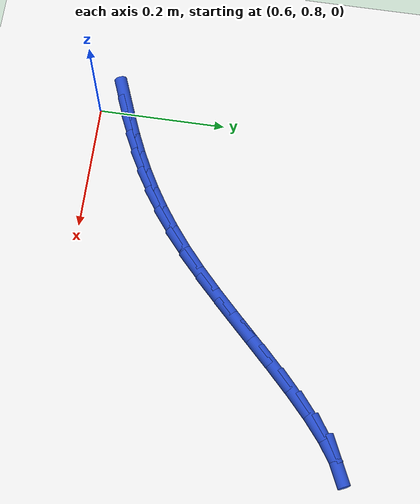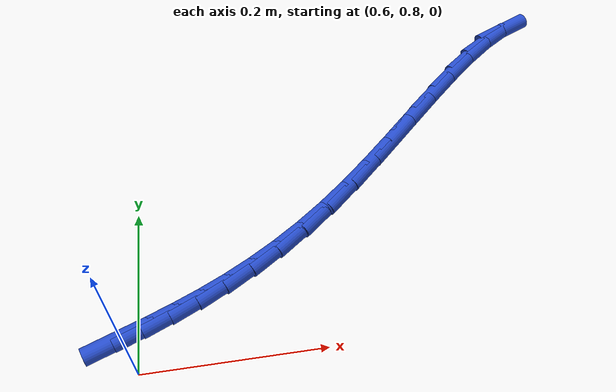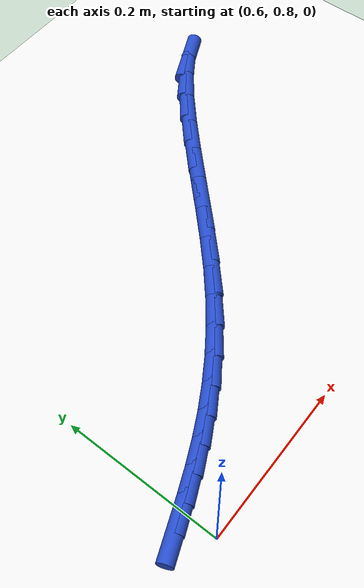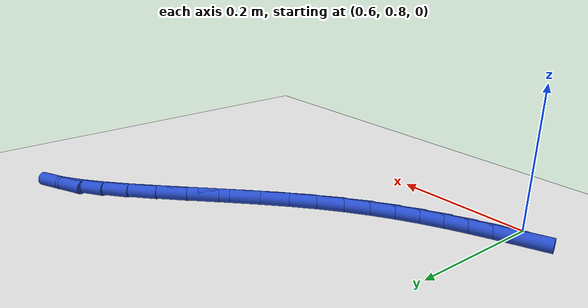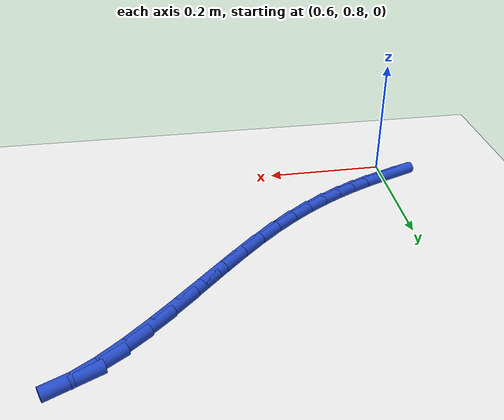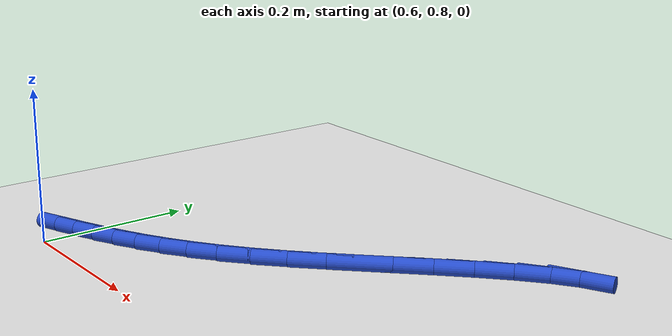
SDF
<sdf version="1.6">
 <world name="default">
  <model name="ground_plane">
   <static>1</static>
   <link name="link">
    <collision name="collision">
     <geometry><plane><normal>0 0 1</normal><size>100 100</size></plane></geometry>
     <surface><friction><ode><mu>100</mu><mu2>50</mu2></ode></friction></surface>
    </collision>
    <visual name="visual">
     <cast_shadows>0</cast_shadows>
     <geometry><plane><normal>0 0 1</normal><size>100 100</size></plane></geometry>
     <material>
      <script><uri>file://media/materials/scripts/gazebo.material</uri><name>Gazebo/WhiteGlow</name></script>
     </material>
    </visual>
   </link>
  </model>
  <model name="line">
   <link name="link_32">
    <pose>0.582020876909174 0.8378103645837458 0.01 0 1.57 0.3691811578344682</pose>
    <collision name="collision">
     <geometry><cylinder><radius>0.01</radius><length>0.08</length></cylinder></geometry>
    </collision>
    <visual name="visual">
     <material>
      <script><name>Gazebo/Blue</name><uri>file://media/materials/scripts/gazebo.material</uri></script>
     </material>
     <geometry><cylinder><radius>0.01</radius><length>0.08</length></cylinder></geometry>
    </visual>
   </link>
   <link name="link_33">
    <pose>0.6116565110295054 0.8492770266211908 0.01 0 1.57 0.3928554119733117</pose>
    <collision name="collision">
     <geometry><cylinder><radius>0.01</radius><length>0.08</length></cylinder></geometry>
    </collision>
    <visual name="visual">
     <material>
      <script><name>Gazebo/Blue</name><uri>file://media/materials/scripts/gazebo.material</uri></script>
     </material>
     <geometry><cylinder><radius>0.01</radius><length>0.08</length></cylinder></geometry>
    </visual>
   </link>
   <link name="link_34">
    <pose>0.6408951882540785 0.8613934387515454 0.01 0 1.57 0.42553629461489445</pose>
    <collision name="collision">
     <geometry><cylinder><radius>0.01</radius><length>0.08</length></cylinder></geometry>
    </collision>
    <visual name="visual">
     <material>
      <script><name>Gazebo/Blue</name><uri>file://media/materials/scripts/gazebo.material</uri></script>
     </material>
     <geometry><cylinder><radius>0.01</radius><length>0.08</length></cylinder></geometry>
    </visual>
   </link>
   <link name="link_35">
    <pose>0.669937869609011 0.8745564373649846 0.01 0 1.57 0.46591985496904315</pose>
    <collision name="collision">
     <geometry><cylinder><radius>0.01</radius><length>0.08</length></cylinder></geometry>
    </collision>
    <visual name="visual">
     <material>
      <script><name>Gazebo/Blue</name><uri>file://media/materials/scripts/gazebo.material</uri></script>
     </material>
     <geometry><cylinder><radius>0.01</radius><length>0.08</length></cylinder></geometry>
    </visual>
   </link>
   <link name="link_36">
    <pose>0.6989855161204205 0.8891628588516828 0.01 0 1.57 0.5121699062970289</pose>
    <collision name="collision">
     <geometry><cylinder><radius>0.01</radius><length>0.08</length></cylinder></geometry>
    </collision>
    <visual name="visual">
     <material>
      <script><name>Gazebo/Blue</name><uri>file://media/materials/scripts/gazebo.material</uri></script>
     </material>
     <geometry><cylinder><radius>0.01</radius><length>0.08</length></cylinder></geometry>
    </visual>
   </link>
   <link name="link_37">
    <pose>0.7282390888144248 0.9056095396018154 0.01 0 1.57 0.5621309083754067</pose>
    <collision name="collision">
     <geometry><cylinder><radius>0.01</radius><length>0.08</length></cylinder></geometry>
    </collision>
    <visual name="visual">
     <material>
      <script><name>Gazebo/Blue</name><uri>file://media/materials/scripts/gazebo.material</uri></script>
     </material>
     <geometry><cylinder><radius>0.01</radius><length>0.08</length></cylinder></geometry>
    </visual>
   </link>
   <link name="link_38">
    <pose>0.7578995487171408 0.9242933160055568 0.01 0 1.57 0.6136002810492278</pose>
    <collision name="collision">
     <geometry><cylinder><radius>0.01</radius><length>0.08</length></cylinder></geometry>
    </collision>
    <visual name="visual">
     <material>
      <script><name>Gazebo/Blue</name><uri>file://media/materials/scripts/gazebo.material</uri></script>
     </material>
     <geometry><cylinder><radius>0.01</radius><length>0.08</length></cylinder></geometry>
    </visual>
   </link>
   <link name="link_39">
    <pose>0.7881678568546865 0.9456110244530816 0.01 0 1.57 0.6645898140644212</pose>
    <collision name="collision">
     <geometry><cylinder><radius>0.01</radius><length>0.08</length></cylinder></geometry>
    </collision>
    <visual name="visual">
     <material>
      <script><name>Gazebo/Blue</name><uri>file://media/materials/scripts/gazebo.material</uri></script>
     </material>
     <geometry><cylinder><radius>0.01</radius><length>0.08</length></cylinder></geometry>
    </visual>
   </link>
   <link name="link_40">
    <pose>0.8192449742531794 0.9699595013345648 0.01 0 1.57 0.7134984987689619</pose>
    <collision name="collision">
     <geometry><cylinder><radius>0.01</radius><length>0.08</length></cylinder></geometry>
    </collision>
    <visual name="visual">
     <material>
      <script><name>Gazebo/Blue</name><uri>file://media/materials/scripts/gazebo.material</uri></script>
     </material>
     <geometry><cylinder><radius>0.01</radius><length>0.08</length></cylinder></geometry>
    </visual>
   </link>
   <link name="link_41">
    <pose>0.8513314733616647 0.9977345436793317 0.01 0 1.57 0.7547451613966405</pose>
    <collision name="collision">
     <geometry><cylinder><radius>0.01</radius><length>0.08</length></cylinder></geometry>
    </collision>
    <visual name="visual">
     <material>
      <script><name>Gazebo/Blue</name><uri>file://media/materials/scripts/gazebo.material</uri></script>
     </material>
     <geometry><cylinder><radius>0.01</radius><length>0.08</length></cylinder></geometry>
    </visual>
   </link>
   <link name="link_42">
    <pose>0.8844652569719982 1.0288968418538567 0.01 0 1.57 0.7794222139113126</pose>
    <collision name="collision">
     <geometry><cylinder><radius>0.01</radius><length>0.08</length></cylinder></geometry>
    </collision>
    <visual name="visual">
     <material>
      <script><name>Gazebo/Blue</name><uri>file://media/materials/scripts/gazebo.material</uri></script>
     </material>
     <geometry><cylinder><radius>0.01</radius><length>0.08</length></cylinder></geometry>
    </visual>
   </link>
   <link name="link_43">
    <pose>0.9182704947264925 1.062300438229421 0.01 0 1.57 0.7896335143248391</pose>
    <collision name="collision">
     <geometry><cylinder><radius>0.01</radius><length>0.08</length></cylinder></geometry>
    </collision>
    <visual name="visual">
     <material>
      <script><name>Gazebo/Blue</name><uri>file://media/materials/scripts/gazebo.material</uri></script>
     </material>
     <geometry><cylinder><radius>0.01</radius><length>0.08</length></cylinder></geometry>
    </visual>
   </link>
   <link name="link_44">
    <pose>0.9523065491469905 1.0966260299425301 0.01 0 1.57 0.7869043434274262</pose>
    <collision name="collision">
     <geometry><cylinder><radius>0.01</radius><length>0.08</length></cylinder></geometry>
    </collision>
    <visual name="visual">
     <material>
      <script><name>Gazebo/Blue</name><uri>file://media/materials/scripts/gazebo.material</uri></script>
     </material>
     <geometry><cylinder><radius>0.01</radius><length>0.08</length></cylinder></geometry>
    </visual>
   </link>
   <link name="link_45">
    <pose>0.9861327827553367 1.1305543141296905 0.01 0 1.57 0.7706547886719611</pose>
    <collision name="collision">
     <geometry><cylinder><radius>0.01</radius><length>0.08</length></cylinder></geometry>
    </collision>
    <visual name="visual">
     <material>
      <script><name>Gazebo/Blue</name><uri>file://media/materials/scripts/gazebo.material</uri></script>
     </material>
     <geometry><cylinder><radius>0.01</radius><length>0.08</length></cylinder></geometry>
    </visual>
   </link>
   <link name="link_46">
    <pose>1.0193085580733734 1.1627659879274077 0.01 0 1.57 0.7379493426746008</pose>
    <collision name="collision">
     <geometry><cylinder><radius>0.01</radius><length>0.08</length></cylinder></geometry>
    </collision>
    <visual name="visual">
     <material>
      <script><name>Gazebo/Blue</name><uri>file://media/materials/scripts/gazebo.material</uri></script>
     </material>
     <geometry><cylinder><radius>0.01</radius><length>0.08</length></cylinder></geometry>
    </visual>
   </link>
   <link name="link_47">
    <pose>1.0513932376229451 1.1919417484721886 0.01 0 1.57 0.6822431229085715</pose>
    <collision name="collision">
     <geometry><cylinder><radius>0.01</radius><length>0.08</length></cylinder></geometry>
    </collision>
    <visual name="visual">
     <material>
      <script><name>Gazebo/Blue</name><uri>file://media/materials/scripts/gazebo.material</uri></script>
     </material>
     <geometry><cylinder><radius>0.01</radius><length>0.08</length></cylinder></geometry>
    </visual>
   </link>
   <link name="link_48">
    <pose>1.0819461839258948 1.2167622929005386 0.01 0 1.57 0.5902352593134981</pose>
    <collision name="collision">
     <geometry><cylinder><radius>0.01</radius><length>0.08</length></cylinder></geometry>
    </collision>
    <visual name="visual">
     <material>
      <script><name>Gazebo/Blue</name><uri>file://media/materials/scripts/gazebo.material</uri></script>
     </material>
     <geometry><cylinder><radius>0.01</radius><length>0.08</length></cylinder></geometry>
    </visual>
   </link>
   <link name="link_49">
    <pose>1.110526759504066 1.2359083183489639 0.01 0 1.57 0.43476376833054675</pose>
    <collision name="collision">
     <geometry><cylinder><radius>0.01</radius><length>0.08</length></cylinder></geometry>
    </collision>
    <visual name="visual">
     <material>
      <script><name>Gazebo/Blue</name><uri>file://media/materials/scripts/gazebo.material</uri></script>
     </material>
     <geometry><cylinder><radius>0.01</radius><length>0.08</length></cylinder></geometry>
    </visual>
   </link>
  </model>
 </world>
</sdf>
